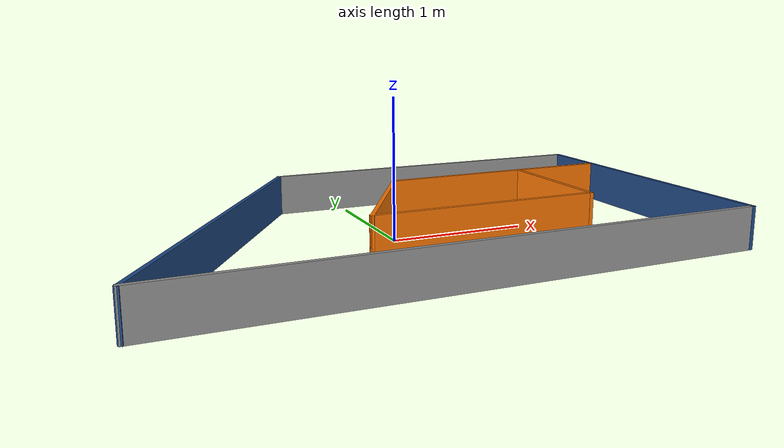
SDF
<?xml version='1.0'?>
<sdf version='1.7'>
  <model name='r1map'>
    <pose>0.099204 -0.027 0 0 -0 0</pose>
    <link name='Wall_0'>
      <collision name='Wall_0_Collision'>
        <geometry>
          <box>
            <size>4 0.03 0.3</size>
          </box>
        </geometry>
        <pose>0 0 0.15 0 -0 0</pose>
      </collision>
      <visual name='Wall_0_Visual'>
        <pose>0 0 0.15 0 -0 0</pose>
        <geometry>
          <box>
            <size>4 0.03 0.3</size>
          </box>
        </geometry>
        <material>
          <script>
            <uri>file://media/materials/scripts/gazebo.material</uri>
            <name>Gazebo/Grey</name>
          </script>
          <ambient>1 1 1 1</ambient>
        </material>
        <meta>
          <layer>0</layer>
        </meta>
      </visual>
      <pose>0.002796 -1.125 0 0 -0 0</pose>
    </link>
    <link name='Wall_11'>
      <collision name='Wall_11_Collision'>
        <geometry>
          <box>
            <size>0.996474 0.03 0.3</size>
          </box>
        </geometry>
        <pose>0 0 0.15 0 -0 0</pose>
      </collision>
      <visual name='Wall_11_Visual'>
        <pose>0 0 0.15 0 -0 0</pose>
        <geometry>
          <box>
            <size>0.996474 0.03 0.3</size>
          </box>
        </geometry>
        <material>
          <script>
            <uri>file://media/materials/scripts/gazebo.material</uri>
            <name>Gazebo/Grey</name>
          </script>
          <ambient>0.996078 0.47451 0.0196078 1</ambient>
        </material>
        <meta>
          <layer>0</layer>
        </meta>
      </visual>
      <pose>1.2608 0.137 0 0 -0 -1.56458</pose>
    </link>
    <link name='Wall_13'>
      <collision name='Wall_13_Collision'>
        <geometry>
          <box>
            <size>1.699 0.03 0.3</size>
          </box>
        </geometry>
        <pose>0 0 0.15 0 -0 0</pose>
      </collision>
      <visual name='Wall_13_Visual'>
        <pose>0 0 0.15 0 -0 0</pose>
        <geometry>
          <box>
            <size>1.699 0.03 0.3</size>
          </box>
        </geometry>
        <material>
          <script>
            <uri>file://media/materials/scripts/gazebo.material</uri>
            <name>Gazebo/Grey</name>
          </script>
          <ambient>0.996078 0.47451 0.0196078 1</ambient>
        </material>
        <meta>
          <layer>0</layer>
        </meta>
      </visual>
      <pose>0.429296 -0.346 0 0 -0 3.14159</pose>
    </link>
    <link name='Wall_18'>
      <collision name='Wall_18_Collision'>
        <geometry>
          <box>
            <size>1.1302 0.03 0.3</size>
          </box>
        </geometry>
        <pose>0 0 0.15 0 -0 0</pose>
      </collision>
      <visual name='Wall_18_Visual'>
        <pose>0 0 0.15 0 -0 0</pose>
        <geometry>
          <box>
            <size>1.1302 0.03 0.3</size>
          </box>
        </geometry>
        <material>
          <script>
            <uri>file://media/materials/scripts/gazebo.material</uri>
            <name>Gazebo/Grey</name>
          </script>
          <ambient>0.996078 0.47451 0.0196078 1</ambient>
        </material>
        <meta>
          <layer>0</layer>
        </meta>
      </visual>
      <pose>-0.130204 0.1305 0 0 -0 1.04737</pose>
    </link>
    <link name='Wall_2'>
      <collision name='Wall_2_Collision'>
        <geometry>
          <box>
            <size>2.28003 0.03 0.3</size>
          </box>
        </geometry>
        <pose>0 0 0.15 0 -0 0</pose>
      </collision>
      <visual name='Wall_2_Visual'>
        <pose>0 0 0.15 0 -0 0</pose>
        <geometry>
          <box>
            <size>2.28003 0.03 0.3</size>
          </box>
        </geometry>
        <material>
          <script>
            <uri>file://media/materials/scripts/gazebo.material</uri>
            <name>Gazebo/Grey</name>
          </script>
          <ambient>0.12549 0.290196 0.529412 1</ambient>
        </material>
        <meta>
          <layer>0</layer>
        </meta>
      </visual>
      <pose>1.9878 8e-06 0 0 -0 1.5708</pose>
    </link>
    <link name='Wall_20'>
      <collision name='Wall_20_Collision'>
        <geometry>
          <box>
            <size>1.14268 0.03 0.3</size>
          </box>
        </geometry>
        <pose>0 0 0.15 0 -0 0</pose>
      </collision>
      <visual name='Wall_20_Visual'>
        <pose>0 0 0.15 0 -0 0</pose>
        <geometry>
          <box>
            <size>1.14268 0.03 0.3</size>
          </box>
        </geometry>
        <material>
          <script>
            <uri>file://media/materials/scripts/gazebo.material</uri>
            <name>Gazebo/Grey</name>
          </script>
          <ambient>0.996078 0.47451 0.0196078 1</ambient>
        </material>
        <meta>
          <layer>0</layer>
        </meta>
      </visual>
      <pose>0.701296 0.6135 0 0 -0 0.01168</pose>
    </link>
    <link name='Wall_22'>
      <collision name='Wall_22_Collision'>
        <geometry>
          <box>
            <size>2.66419 0.03 0.3</size>
          </box>
        </geometry>
        <pose>0 0 0.15 0 -0 0</pose>
      </collision>
      <visual name='Wall_22_Visual'>
        <pose>0 0 0.15 0 -0 0</pose>
        <geometry>
          <box>
            <size>2.66419 0.03 0.3</size>
          </box>
        </geometry>
        <material>
          <script>
            <uri>file://media/materials/scripts/gazebo.material</uri>
            <name>Gazebo/Grey</name>
          </script>
          <ambient>0.12549 0.290196 0.529412 1</ambient>
        </material>
        <meta>
          <layer>0</layer>
        </meta>
      </visual>
      <pose>-1.2972 -0 0 0 -0 -2.11773</pose>
    </link>
    <link name='Wall_4'>
      <collision name='Wall_4_Collision'>
        <geometry>
          <box>
            <size>2.63 0.03 0.3</size>
          </box>
        </geometry>
        <pose>0 0 0.15 0 -0 0</pose>
      </collision>
      <visual name='Wall_4_Visual'>
        <pose>0 0 0.15 0 -0 0</pose>
        <geometry>
          <box>
            <size>2.63 0.03 0.3</size>
          </box>
        </geometry>
        <material>
          <script>
            <uri>file://media/materials/scripts/gazebo.material</uri>
            <name>Gazebo/Grey</name>
          </script>
          <ambient>1 1 1 1</ambient>
        </material>
        <meta>
          <layer>0</layer>
        </meta>
      </visual>
      <pose>0.687796 1.12501 0 0 -0 -3.14159</pose>
    </link>
    <link name='Wall_9'>
      <collision name='Wall_9_Collision'>
        <geometry>
          <box>
            <size>0.756409 0.03 0.3</size>
          </box>
        </geometry>
        <pose>0 0 0.15 0 -0 0</pose>
      </collision>
      <visual name='Wall_9_Visual'>
        <pose>0 0 0.15 0 -0 0</pose>
        <geometry>
          <box>
            <size>0.756409 0.03 0.3</size>
          </box>
        </geometry>
        <material>
          <script>
            <uri>file://media/materials/scripts/gazebo.material</uri>
            <name>Gazebo/Grey</name>
          </script>
          <ambient>0.996078 0.47451 0.0196078 1</ambient>
        </material>
        <meta>
          <layer>0</layer>
        </meta>
      </visual>
      <pose>1.6208 0.622 0 0 -0 -3.13608</pose>
    </link>
    <static>1</static>
  </model>
</sdf>
